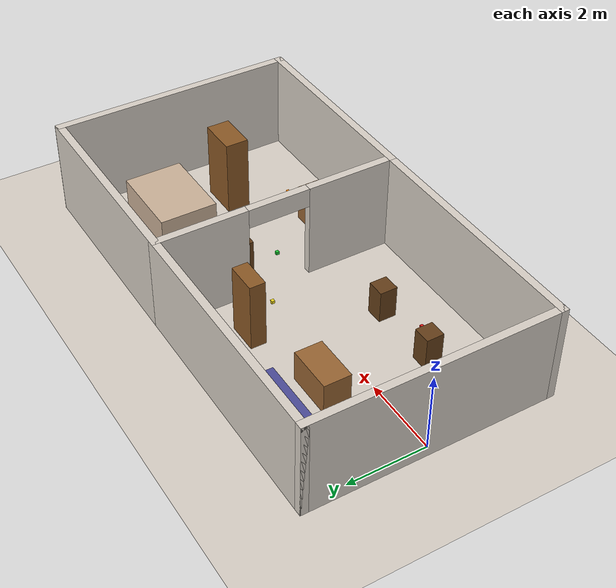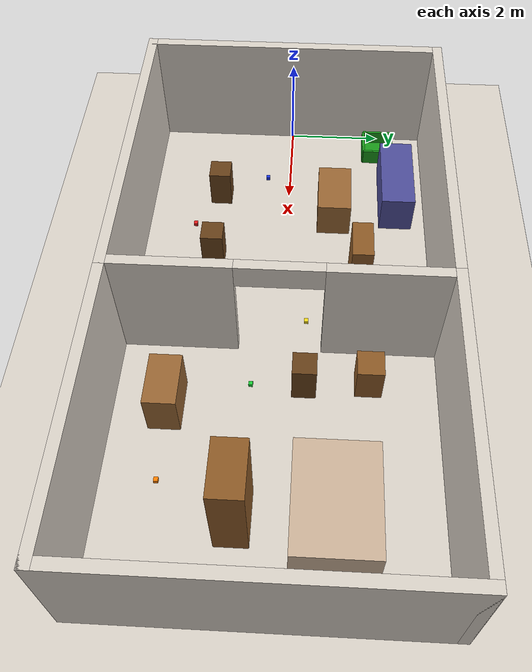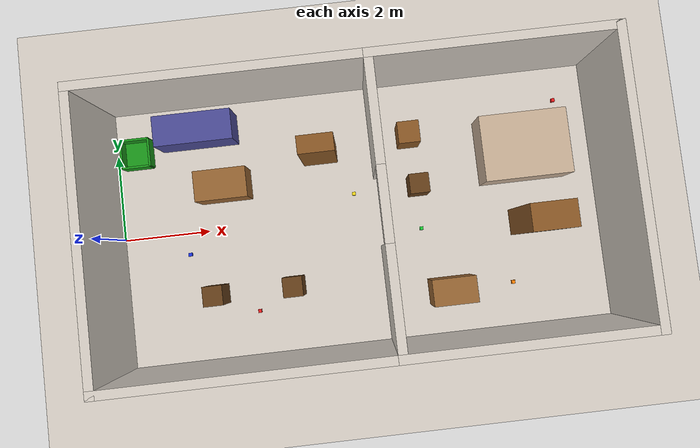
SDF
<?xml version="1.0"?>
<sdf version="1.6">
<world name="tidybot_home">

  <!-- Gazebo ROS state plugin — provides get/set entity state services -->
  <plugin name="gazebo_ros_state" filename="libgazebo_ros_state.so">
    <ros><namespace>/gazebo</namespace></ros>
    <update_rate>50.0</update_rate>
  </plugin>

  <!-- ── Default camera: top-down view centered on scene ── -->
  <gui fullscreen="0">
    <camera name="user_camera">
      <pose>5.5 0 18 0 1.5708 1.5708</pose>
    </camera>
  </gui>

  <!-- ── Physics ── -->
  <physics type="ode">
    <max_step_size>0.001</max_step_size>
    <real_time_factor>1.0</real_time_factor>
    <real_time_update_rate>1000</real_time_update_rate>
    <gravity>0 0 -9.81</gravity>
    <ode>
      <solver>
        <type>quick</type>
        <iters>200</iters>
        <sor>1.2</sor>
      </solver>
      <constraints>
        <cfm>0.0001</cfm>
        <erp>0.2</erp>
        <contact_max_correcting_vel>2.0</contact_max_correcting_vel>
        <contact_surface_layer>0.003</contact_surface_layer>
      </constraints>
    </ode>
  </physics>

  <!-- ── Ambient light ── -->
  <light name="sun" type="directional">
    <cast_shadows>true</cast_shadows>
    <pose>0 0 10 0 0 0</pose>
    <diffuse>0.85 0.85 0.85 1</diffuse>
    <specular>0.2 0.2 0.2 1</specular>
    <direction>-0.5 0.5 -1</direction>
  </light>

  <light name="ambient_fill" type="directional">
    <cast_shadows>false</cast_shadows>
    <pose>0 0 10 0 0 0</pose>
    <diffuse>0.3 0.3 0.3 1</diffuse>
    <specular>0.0 0.0 0.0 1</specular>
    <direction>0.5 -0.5 -1</direction>
  </light>

  <!-- ── Ground plane with friction ── -->
  <model name="ground_plane">
    <static>true</static>
    <link name="link">
      <collision name="collision">
        <geometry><plane><normal>0 0 1</normal><size>50 50</size></plane></geometry>
        <surface>
          <friction>
            <ode>
              <mu>0.9</mu>
              <mu2>0.9</mu2>
            </ode>
          </friction>
          <contact><ode><kp>100000</kp><kd>100</kd><min_depth>0.002</min_depth><max_vel>2.0</max_vel></ode></contact>
        </surface>
      </collision>
      <visual name="visual">
        <geometry><plane><normal>0 0 1</normal><size>50 50</size></plane></geometry>
        <material>
          <ambient>0.85 0.82 0.78 1</ambient>
          <diffuse>0.85 0.82 0.78 1</diffuse>
        </material>
      </visual>
    </link>
  </model>

  <!-- ─── ROOM 1 WALLS ─── -->

  <!-- West wall -->
  <model name="wall_west">
    <static>true</static>
    <pose>-0.1 0 1.25 0 0 0</pose>
    <link name="link">
      <collision name="col">
        <geometry><box><size>0.2 6.4 2.5</size></box></geometry>
        <surface><contact><ode><kp>100000</kp><kd>100</kd><min_depth>0.002</min_depth><max_vel>2.0</max_vel></ode></contact></surface>
      </collision>
      <visual name="vis">
        <geometry><box><size>0.2 6.4 2.5</size></box></geometry>
        <material><ambient>0.85 0.82 0.78 1</ambient><diffuse>0.85 0.82 0.78 1</diffuse></material>
      </visual>
    </link>
  </model>

  <!-- North wall room1 -->
  <model name="wall_north_r1">
    <static>true</static>
    <pose>3.0 3.1 1.25 0 0 0</pose>
    <link name="link">
      <collision name="col"><geometry><box><size>6.4 0.2 2.5</size></box></geometry><surface><contact><ode><kp>100000</kp><kd>100</kd><min_depth>0.002</min_depth><max_vel>2.0</max_vel></ode></contact></surface></collision>
      <visual name="vis">
        <geometry><box><size>6.4 0.2 2.5</size></box></geometry>
        <material><ambient>0.85 0.82 0.78 1</ambient><diffuse>0.85 0.82 0.78 1</diffuse></material>
      </visual>
    </link>
  </model>

  <!-- South wall room1 -->
  <model name="wall_south_r1">
    <static>true</static>
    <pose>3.0 -3.1 1.25 0 0 0</pose>
    <link name="link">
      <collision name="col"><geometry><box><size>6.4 0.2 2.5</size></box></geometry><surface><contact><ode><kp>100000</kp><kd>100</kd><min_depth>0.002</min_depth><max_vel>2.0</max_vel></ode></contact></surface></collision>
      <visual name="vis">
        <geometry><box><size>6.4 0.2 2.5</size></box></geometry>
        <material><ambient>0.85 0.82 0.78 1</ambient><diffuse>0.85 0.82 0.78 1</diffuse></material>
      </visual>
    </link>
  </model>

  <!-- Shared wall — south segment (y: -3.1 → -0.8, span=2.3, centre=-1.95) -->
  <model name="shared_wall_south">
    <static>true</static>
    <pose>6.1 -1.95 1.25 0 0 0</pose>
    <link name="link">
      <collision name="col"><geometry><box><size>0.2 2.3 2.5</size></box></geometry><surface><contact><ode><kp>100000</kp><kd>100</kd><min_depth>0.002</min_depth><max_vel>2.0</max_vel></ode></contact></surface></collision>
      <visual name="vis">
        <geometry><box><size>0.2 2.3 2.5</size></box></geometry>
        <material><ambient>0.85 0.82 0.78 1</ambient><diffuse>0.85 0.82 0.78 1</diffuse></material>
      </visual>
    </link>
  </model>

  <!-- Shared wall — north segment (y: 0.8 → 3.1, span=2.3, centre=1.95) -->
  <model name="shared_wall_north">
    <static>true</static>
    <pose>6.1 1.95 1.25 0 0 0</pose>
    <link name="link">
      <collision name="col"><geometry><box><size>0.2 2.3 2.5</size></box></geometry><surface><contact><ode><kp>100000</kp><kd>100</kd><min_depth>0.002</min_depth><max_vel>2.0</max_vel></ode></contact></surface></collision>
      <visual name="vis">
        <geometry><box><size>0.2 2.3 2.5</size></box></geometry>
        <material><ambient>0.85 0.82 0.78 1</ambient><diffuse>0.85 0.82 0.78 1</diffuse></material>
      </visual>
    </link>
  </model>

  <!-- Doorway lintel (y: -0.8 → 0.8, z: 2.0 → 2.5) -->
  <model name="door_lintel">
    <static>true</static>
    <pose>6.1 0 2.25 0 0 0</pose>
    <link name="link">
      <collision name="col"><geometry><box><size>0.2 1.6 0.5</size></box></geometry><surface><contact><ode><kp>100000</kp><kd>100</kd><min_depth>0.002</min_depth><max_vel>2.0</max_vel></ode></contact></surface></collision>
      <visual name="vis">
        <geometry><box><size>0.2 1.6 0.5</size></box></geometry>
        <material><ambient>0.85 0.82 0.78 1</ambient><diffuse>0.85 0.82 0.78 1</diffuse></material>
      </visual>
    </link>
  </model>

  <!-- ─── ROOM 2 WALLS ─── -->

  <!-- East wall -->
  <model name="wall_east">
    <static>true</static>
    <pose>11.3 0 1.25 0 0 0</pose>
    <link name="link">
      <collision name="col">
        <geometry><box><size>0.2 6.4 2.5</size></box></geometry>
        <surface><contact><ode><kp>100000</kp><kd>100</kd><min_depth>0.002</min_depth><max_vel>2.0</max_vel></ode></contact></surface>
      </collision>
      <visual name="vis">
        <geometry><box><size>0.2 6.4 2.5</size></box></geometry>
        <material><ambient>0.85 0.82 0.78 1</ambient><diffuse>0.85 0.82 0.78 1</diffuse></material>
      </visual>
    </link>
  </model>

  <!-- North wall room2 (x: 6.1 → 11.3, span=5.2, centre=8.7) -->
  <model name="wall_north_r2">
    <static>true</static>
    <pose>8.7 3.1 1.25 0 0 0</pose>
    <link name="link">
      <collision name="col"><geometry><box><size>5.4 0.2 2.5</size></box></geometry><surface><contact><ode><kp>100000</kp><kd>100</kd><min_depth>0.002</min_depth><max_vel>2.0</max_vel></ode></contact></surface></collision>
      <visual name="vis">
        <geometry><box><size>5.4 0.2 2.5</size></box></geometry>
        <material><ambient>0.85 0.82 0.78 1</ambient><diffuse>0.85 0.82 0.78 1</diffuse></material>
      </visual>
    </link>
  </model>

  <!-- South wall room2 -->
  <model name="wall_south_r2">
    <static>true</static>
    <pose>8.7 -3.1 1.25 0 0 0</pose>
    <link name="link">
      <collision name="col"><geometry><box><size>5.4 0.2 2.5</size></box></geometry><surface><contact><ode><kp>100000</kp><kd>100</kd><min_depth>0.002</min_depth><max_vel>2.0</max_vel></ode></contact></surface></collision>
      <visual name="vis">
        <geometry><box><size>5.4 0.2 2.5</size></box></geometry>
        <material><ambient>0.85 0.82 0.78 1</ambient><diffuse>0.85 0.82 0.78 1</diffuse></material>
      </visual>
    </link>
  </model>

  <!-- ══════════════════════════════════════════════════════════
       FURNITURE — ROOM 1 (Living Room)
  ══════════════════════════════════════════════════════════ -->

  <!-- Dining table (1.2 × 0.8 × 0.80 m) -->
  <model name="table_r1">
    <static>true</static>
    <pose>2.5 1.0 0.40 0 0 0</pose>
    <link name="link">
      <collision name="col"><geometry><box><size>1.2 0.8 0.80</size></box></geometry><surface><contact><ode><kp>100000</kp><kd>100</kd><min_depth>0.002</min_depth><max_vel>2.0</max_vel></ode></contact></surface></collision>
      <visual name="vis">
        <geometry><box><size>1.2 0.7 0.80</size></box></geometry>
        <material><ambient>0.6 0.4 0.2 1</ambient><diffuse>0.6 0.4 0.2 1</diffuse></material>
      </visual>
    </link>
  </model>

  <!-- Chair 1 -->
  <model name="chair_r1_a">
    <static>true</static>
    <pose>2.1 -1.5 0.425 0 0 0</pose>
    <link name="link">
      <collision name="col"><geometry><box><size>0.45 0.45 0.85</size></box></geometry><surface><contact><ode><kp>100000</kp><kd>100</kd><min_depth>0.002</min_depth><max_vel>2.0</max_vel></ode></contact></surface></collision>
      <visual name="vis">
        <geometry><box><size>0.45 0.45 0.85</size></box></geometry>
        <material><ambient>0.4 0.25 0.1 1</ambient><diffuse>0.4 0.25 0.1 1</diffuse></material>
      </visual>s
    </link>
  </model>

  <!-- Chair 2 -->
  <model name="chair_r1_b">
    <static>true</static>
    <pose>3.9 -1.5 0.425 0 0 0</pose>
    <link name="link">
      <collision name="col"><geometry><box><size>0.45 0.45 0.85</size></box></geometry><surface><contact><ode><kp>100000</kp><kd>100</kd><min_depth>0.002</min_depth><max_vel>2.0</max_vel></ode></contact></surface></collision>
      <visual name="vis">
        <geometry><box><size>0.45 0.45 0.85</size></box></geometry>
        <material><ambient>0.4 0.25 0.1 1</ambient><diffuse>0.4 0.25 0.1 1</diffuse></material>
      </visual>
    </link>
  </model>

  <!-- Couch (1.8 × 0.7 × 0.85 m) — north side of room 1 -->
  <model name="couch_r1">
    <static>true</static>
    <pose>2.0 2.35 0.425 0 0 0</pose>
    <link name="link">
      <collision name="col"><geometry><box><size>1.8 0.7 0.85</size></box></geometry><surface><contact><ode><kp>100000</kp><kd>100</kd><min_depth>0.002</min_depth><max_vel>2.0</max_vel></ode></contact></surface></collision>
      <visual name="vis">
        <geometry><box><size>1.8 0.7 0.85</size></box></geometry>
        <material><ambient>0.3 0.3 0.6 1</ambient><diffuse>0.3 0.3 0.6 1</diffuse></material>
      </visual>
    </link>
  </model>

  <!-- Bookshelf (0.8 × 0.4 × 1.8 m) — east side room 1 -->
  <model name="shelf_r1">
    <static>true</static>
    <pose>4.8 1.5 0.9 0 0 0</pose>
    <link name="link">
      <collision name="col"><geometry><box><size>0.8 0.4 1.8</size></box></geometry><surface><contact><ode><kp>100000</kp><kd>100</kd><min_depth>0.002</min_depth><max_vel>2.0</max_vel></ode></contact></surface></collision>
      <visual name="vis">
        <geometry><box><size>0.8 0.4 1.8</size></box></geometry>
        <material><ambient>0.55 0.35 0.15 1</ambient><diffuse>0.55 0.35 0.15 1</diffuse></material>
      </visual>
    </link>
  </model>

  <!-- ══════════════════════════════════════════════════════════
       FURNITURE — ROOM 2 (Bedroom)
  ══════════════════════════════════════════════════════════ -->

  <!-- Bed (2.0 × 1.5 × 0.90 m) -->
  <model name="bed_r2">
    <static>true</static>
    <pose>9.5 1.1 0.45 0 0 0</pose>
    <link name="link">
      <collision name="col"><geometry><box><size>2.0 1.5 0.90</size></box></geometry><surface><contact><ode><kp>100000</kp><kd>100</kd><min_depth>0.002</min_depth><max_vel>2.0</max_vel></ode></contact></surface></collision>
      <visual name="vis">
        <geometry><box><size>2.0 1.5 0.90</size></box></geometry>
        <material><ambient>0.8 0.7 0.6 1</ambient><diffuse>0.8 0.7 0.6 1</diffuse></material>
      </visual>
    </link>
  </model>

  <!-- Nightstand -->
  <model name="nightstand_r2">
    <static>true</static>
    <pose>6.9 1.7 0.40 0 0 0</pose>
    <link name="link">
      <collision name="col"><geometry><box><size>0.5 0.5 0.80</size></box></geometry><surface><contact><ode><kp>100000</kp><kd>100</kd><min_depth>0.002</min_depth><max_vel>2.0</max_vel></ode></contact></surface></collision>
      <visual name="vis">
        <geometry><box><size>0.5 0.5 0.80</size></box></geometry>
        <material><ambient>0.55 0.35 0.15 1</ambient><diffuse>0.55 0.35 0.15 1</diffuse></material>
      </visual>
    </link>
  </model>

  <!-- Wardrobe (1.0 × 0.6 × 2.0 m) -->
  <model name="wardrobe_r2">
    <static>true</static>
    <pose>9.6 -0.6 1.0 0 0 0</pose>
    <link name="link">
      <collision name="col"><geometry><box><size>1.0 0.6 2.0</size></box></geometry><surface><contact><ode><kp>100000</kp><kd>100</kd><min_depth>0.002</min_depth><max_vel>2.0</max_vel></ode></contact></surface></collision>
      <visual name="vis">
        <geometry><box><size>1.0 0.6 2.0</size></box></geometry>
        <material><ambient>0.55 0.35 0.15 1</ambient><diffuse>0.55 0.35 0.15 1</diffuse></material>
      </visual>
    </link>
  </model>

  <!-- Desk + chair room 2 -->
  <model name="desk_r2">
    <static>true</static>
    <pose>7.5 -2.0 0.475 0 0 0</pose>
    <link name="link">
      <collision name="col"><geometry><box><size>1.0 0.6 0.95</size></box></geometry><surface><contact><ode><kp>100000</kp><kd>100</kd><min_depth>0.002</min_depth><max_vel>2.0</max_vel></ode></contact></surface></collision>
      <visual name="vis">
        <geometry><box><size>1.0 0.6 0.95</size></box></geometry>
        <material><ambient>0.6 0.4 0.2 1</ambient><diffuse>0.6 0.4 0.2 1</diffuse></material>
      </visual>
    </link>
  </model>

  <model name="chair_r2">
    <static>true</static>
    <pose>7 0.5 0.425 0 0 0</pose>
    <link name="link">
      <collision name="col"><geometry><box><size>0.45 0.45 0.85</size></box></geometry><surface><contact><ode><kp>100000</kp><kd>100</kd><min_depth>0.002</min_depth><max_vel>2.0</max_vel></ode></contact></surface></collision>
      <visual name="vis">
        <geometry><box><size>0.45 0.45 0.85</size></box></geometry>
        <material><ambient>0.4 0.25 0.1 1</ambient><diffuse>0.4 0.25 0.1 1</diffuse></material>
      </visual>
    </link>
  </model>

  <!-- Floor panel -->
  <model name="box_floor">
    <static>true</static>
    <pose>0.5 2.0 0.025 0 0 0</pose>
    <link name="link">
      <collision name="col"><geometry><box><size>0.65 0.65 0.05</size></box></geometry><surface><contact><ode><kp>100000</kp><kd>100</kd><min_depth>0.002</min_depth><max_vel>2.0</max_vel></ode></contact></surface></collision>
      <visual name="vis">
        <geometry><box><size>0.65 0.65 0.05</size></box></geometry>
        <material><ambient>0.1 0.6 0.1 1</ambient><diffuse>0.1 0.6 0.1 1</diffuse></material>
      </visual>
    </link>
  </model>

  <!-- Back wall -->
  <model name="box_back">
    <static>true</static>
    <pose>0.5 2.325 0.175 0 0 0</pose>
    <link name="link">
      <collision name="col"><geometry><box><size>0.65 0.05 0.35</size></box></geometry><surface><contact><ode><kp>100000</kp><kd>100</kd><min_depth>0.002</min_depth><max_vel>2.0</max_vel></ode></contact></surface></collision>
      <visual name="vis">
        <geometry><box><size>0.65 0.05 0.35</size></box></geometry>
        <material><ambient>0.1 0.6 0.1 1</ambient><diffuse>0.1 0.6 0.1 1</diffuse></material>
      </visual>
    </link>
  </model>

  <!-- Front wall -->
  <model name="box_front">
    <static>true</static>
    <pose>0.5 1.675 0.175 0 0 0</pose>
    <link name="link">
      <collision name="col"><geometry><box><size>0.65 0.05 0.35</size></box></geometry><surface><contact><ode><kp>100000</kp><kd>100</kd><min_depth>0.002</min_depth><max_vel>2.0</max_vel></ode></contact></surface></collision>
      <visual name="vis">
        <geometry><box><size>0.65 0.05 0.35</size></box></geometry>
        <material><ambient>0.1 0.6 0.1 1</ambient><diffuse>0.1 0.6 0.1 1</diffuse></material>
      </visual>
    </link>
  </model>

  <!-- Left wall -->
  <model name="box_left">
    <static>true</static>
    <pose>0.175 2.0 0.175 0 0 0</pose>
    <link name="link">
      <collision name="col"><geometry><box><size>0.05 0.65 0.35</size></box></geometry><surface><contact><ode><kp>100000</kp><kd>100</kd><min_depth>0.002</min_depth><max_vel>2.0</max_vel></ode></contact></surface></collision>
      <visual name="vis">
        <geometry><box><size>0.05 0.65 0.35</size></box></geometry>
        <material><ambient>0.1 0.6 0.1 1</ambient><diffuse>0.1 0.6 0.1 1</diffuse></material>
      </visual>
    </link>
  </model>

  <!-- Right wall -->
  <model name="box_right">
    <static>true</static>
    <pose>0.825 2.0 0.175 0 0 0</pose>
    <link name="link">
      <collision name="col"><geometry><box><size>0.05 0.65 0.35</size></box></geometry><surface><contact><ode><kp>100000</kp><kd>100</kd><min_depth>0.002</min_depth><max_vel>2.0</max_vel></ode></contact></surface></collision>
      <visual name="vis">
        <geometry><box><size>0.05 0.65 0.35</size></box></geometry>
        <material><ambient>0.1 0.6 0.1 1</ambient><diffuse>0.1 0.6 0.1 1</diffuse></material>
      </visual>
    </link>
  </model>

  <!-- cube1 — red cube (Room 1, centre corridor) -->
  <model name="cube1">
    <pose>3.0 -2.0 0.04 0 0 0</pose>
    <link name="link">
      <inertial>
        <mass>0.2</mass>
        <inertia><ixx>0.0005</ixx><ixy>0</ixy><ixz>0</ixz>
                 <iyy>0.0005</iyy><iyz>0</iyz><izz>0.0005</izz></inertia>
      </inertial>
      <collision name="col">
        <geometry><box><size>0.08 0.08 0.08</size></box></geometry>
        <surface>
          <friction><ode><mu>0.6</mu><mu2>0.6</mu2></ode></friction>
          <contact><ode><kp>100000</kp><kd>100</kd><min_depth>0.002</min_depth><max_vel>2.0</max_vel></ode></contact>
        </surface>
      </collision>
      <visual name="vis">
        <geometry><box><size>0.08 0.08 0.08</size></box></geometry>
        <material><ambient>0.9 0.1 0.1 1</ambient><diffuse>0.9 0.1 0.1 1</diffuse></material>
      </visual>
    </link>
  </model>

  <!-- cube2 — red cube (Room 2, east side path) -->
  <model name="cube2">
    <pose>10.5 2.2 0.04 0 0 0</pose>
    <link name="link">
      <inertial>
        <mass>0.2</mass>
        <inertia><ixx>0.0005</ixx><ixy>0</ixy><ixz>0</ixz>
                 <iyy>0.0005</iyy><iyz>0</iyz><izz>0.0005</izz></inertia>
      </inertial>
      <collision name="col">
        <geometry><box><size>0.08 0.08 0.08</size></box></geometry>
        <surface>
          <friction><ode><mu>0.6</mu><mu2>0.6</mu2></ode></friction>
          <contact><ode><kp>100000</kp><kd>100</kd><min_depth>0.002</min_depth><max_vel>2.0</max_vel></ode></contact>
        </surface>
      </collision>
      <visual name="vis">
        <geometry><box><size>0.08 0.08 0.08</size></box></geometry>
        <material><ambient>0.9 0.1 0.1 1</ambient><diffuse>0.9 0.1 0.1 1</diffuse></material>
      </visual>
    </link>
  </model>

  <!-- cube3 — blue cube (Room 1, near start) -->
  <model name="cube3">
    <pose>1.5 -0.5 0.04 0 0 0</pose>
    <link name="link">
      <inertial>
        <mass>0.2</mass>
        <inertia><ixx>0.0005</ixx><ixy>0</ixy><ixz>0</ixz>
                 <iyy>0.0005</iyy><iyz>0</iyz><izz>0.0005</izz></inertia>
      </inertial>
      <collision name="col">
        <geometry><box><size>0.08 0.08 0.08</size></box></geometry>
        <surface>
          <friction><ode><mu>0.6</mu><mu2>0.6</mu2></ode></friction>
          <contact><ode><kp>100000</kp><kd>100</kd><min_depth>0.002</min_depth><max_vel>2.0</max_vel></ode></contact>
        </surface>
      </collision>
      <visual name="vis">
        <geometry><box><size>0.08 0.08 0.08</size></box></geometry>
        <material><ambient>0.1 0.2 0.9 1</ambient><diffuse>0.1 0.2 0.9 1</diffuse></material>
      </visual>
    </link>
  </model>

  <!-- cube4 — yellow cube (Room 1, near doorway approach) -->
  <model name="cube4">
    <pose>5.5 0.5 0.04 0 0 0</pose>
    <link name="link">
      <inertial>
        <mass>0.2</mass>
        <inertia><ixx>0.0005</ixx><ixy>0</ixy><ixz>0</ixz>
                 <iyy>0.0005</iyy><iyz>0</iyz><izz>0.0005</izz></inertia>
      </inertial>
      <collision name="col">
        <geometry><box><size>0.08 0.08 0.08</size></box></geometry>
        <surface>
          <friction><ode><mu>0.6</mu><mu2>0.6</mu2></ode></friction>
          <contact><ode><kp>100000</kp><kd>100</kd><min_depth>0.002</min_depth><max_vel>2.0</max_vel></ode></contact>
        </surface>
      </collision>
      <visual name="vis">
        <geometry><box><size>0.08 0.08 0.08</size></box></geometry>
        <material><ambient>0.95 0.85 0.1 1</ambient><diffuse>0.95 0.85 0.1 1</diffuse></material>
      </visual>
    </link>
  </model>

  <!-- cube5 — green cube (Room 2, entrance) -->
  <model name="cube5">
    <pose>7.0 -0.5 0.04 0 0 0</pose>
    <link name="link">
      <inertial>
        <mass>0.2</mass>
        <inertia><ixx>0.0005</ixx><ixy>0</ixy><ixz>0</ixz>
                 <iyy>0.0005</iyy><iyz>0</iyz><izz>0.0005</izz></inertia>
      </inertial>
      <collision name="col">
        <geometry><box><size>0.08 0.08 0.08</size></box></geometry>
        <surface>
          <friction><ode><mu>0.6</mu><mu2>0.6</mu2></ode></friction>
          <contact><ode><kp>100000</kp><kd>100</kd><min_depth>0.002</min_depth><max_vel>2.0</max_vel></ode></contact>
        </surface>
      </collision>
      <visual name="vis">
        <geometry><box><size>0.08 0.08 0.08</size></box></geometry>
        <material><ambient>0.1 0.8 0.2 1</ambient><diffuse>0.1 0.8 0.2 1</diffuse></material>
      </visual>
    </link>
  </model>

  <!-- cube6 — orange cube (Room 2, mid path) -->
  <model name="cube6">
    <pose>9.0 -2.0 0.04 0 0 0</pose>
    <link name="link">
      <inertial>
        <mass>0.2</mass>
        <inertia><ixx>0.0005</ixx><ixy>0</ixy><ixz>0</ixz>
                 <iyy>0.0005</iyy><iyz>0</iyz><izz>0.0005</izz></inertia>
      </inertial>
      <collision name="col">
        <geometry><box><size>0.08 0.08 0.08</size></box></geometry>
        <surface>
          <friction><ode><mu>0.6</mu><mu2>0.6</mu2></ode></friction>
          <contact><ode><kp>100000</kp><kd>100</kd><min_depth>0.002</min_depth><max_vel>2.0</max_vel></ode></contact>
        </surface>
      </collision>
      <visual name="vis">
        <geometry><box><size>0.08 0.08 0.08</size></box></geometry>
        <material><ambient>1.0 0.5 0.0 1</ambient><diffuse>1.0 0.5 0.0 1</diffuse></material>
      </visual>
    </link>
  </model>

</world>
</sdf>
